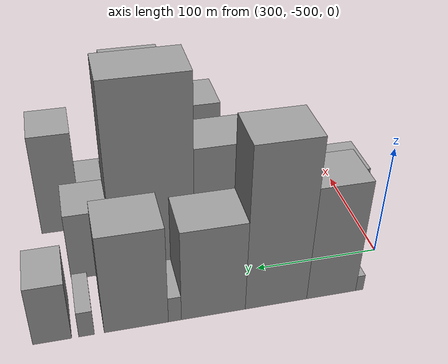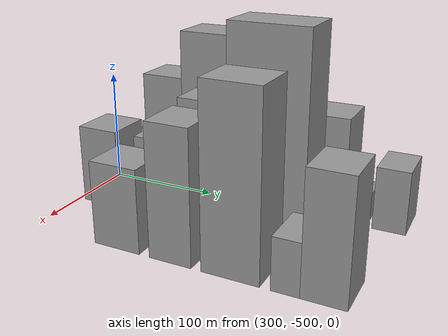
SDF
<sdf version="1.6">
 <world name="default">
  <model name="building_161">
   <static>1</static>
   <pose>280.0000 -469.6710 0 0.000000 0.000000 0.000000</pose>
   <link name="link">
    <pose>0 0 7.50 0 0 0</pose>
    <collision name="collision"><geometry><box><size>40.0000 6.0651 15.0000</size></box></geometry></collision>
    <visual name="visual">
     <cast_shadows>0</cast_shadows>
     <geometry><box><size>40.0000 6.0651 15.0000</size></box></geometry>
     <material>
      <script>
       <uri>model://grey_wall/materials/scripts</uri>
       <uri>model://grey_wall/materials/textures</uri>
       <name>vrc/grey_wall</name>
      </script>
     </material>
    </visual>
   </link>
  </model>
  <model name="building_162">
   <static>1</static>
   <pose>280.0000 -446.8556 0 0.000000 0.000000 0.000000</pose>
   <link name="link">
    <pose>0 0 52.50 0 0 0</pose>
    <collision name="collision"><geometry><box><size>40.0000 39.5656 105.0000</size></box></geometry></collision>
    <visual name="visual">
     <cast_shadows>0</cast_shadows>
     <geometry><box><size>40.0000 39.5656 105.0000</size></box></geometry>
     <material>
      <script>
       <uri>model://grey_wall/materials/scripts</uri>
       <uri>model://grey_wall/materials/textures</uri>
       <name>vrc/grey_wall</name>
      </script>
     </material>
    </visual>
   </link>
  </model>
  <model name="building_163">
   <static>1</static>
   <pose>280.0000 -402.9466 0 0.000000 0.000000 0.000000</pose>
   <link name="link">
    <pose>0 0 73.50 0 0 0</pose>
    <collision name="collision"><geometry><box><size>40.0000 48.2525 147.0000</size></box></geometry></collision>
    <visual name="visual">
     <cast_shadows>0</cast_shadows>
     <geometry><box><size>40.0000 48.2525 147.0000</size></box></geometry>
     <material>
      <script>
       <uri>model://grey_wall/materials/scripts</uri>
       <uri>model://grey_wall/materials/textures</uri>
       <name>vrc/grey_wall</name>
      </script>
     </material>
    </visual>
   </link>
  </model>
  <model name="building_164">
   <static>1</static>
   <pose>280.0000 -354.5082 0 0.000000 0.000000 0.000000</pose>
   <link name="link">
    <pose>0 0 42.00 0 0 0</pose>
    <collision name="collision"><geometry><box><size>40.0000 48.6243 84.0000</size></box></geometry></collision>
    <visual name="visual">
     <cast_shadows>0</cast_shadows>
     <geometry><box><size>40.0000 48.6243 84.0000</size></box></geometry>
     <material>
      <script>
       <uri>model://grey_wall/materials/scripts</uri>
       <uri>model://grey_wall/materials/textures</uri>
       <name>vrc/grey_wall</name>
      </script>
     </material>
    </visual>
   </link>
  </model>
  <model name="building_165">
   <static>1</static>
   <pose>280.0000 -325.3545 0 0.000000 0.000000 0.000000</pose>
   <link name="link">
    <pose>0 0 12.00 0 0 0</pose>
    <collision name="collision"><geometry><box><size>40.0000 9.6832 24.0000</size></box></geometry></collision>
    <visual name="visual">
     <cast_shadows>0</cast_shadows>
     <geometry><box><size>40.0000 9.6832 24.0000</size></box></geometry>
     <material>
      <script>
       <uri>model://grey_wall/materials/scripts</uri>
       <uri>model://grey_wall/materials/textures</uri>
       <name>vrc/grey_wall</name>
      </script>
     </material>
    </visual>
   </link>
  </model>
  <model name="building_166">
   <static>1</static>
   <pose>280.0000 -297.0062 0 0.000000 0.000000 0.000000</pose>
   <link name="link">
    <pose>0 0 45.00 0 0 0</pose>
    <collision name="collision"><geometry><box><size>40.0000 47.0134 90.0000</size></box></geometry></collision>
    <visual name="visual">
     <cast_shadows>0</cast_shadows>
     <geometry><box><size>40.0000 47.0134 90.0000</size></box></geometry>
     <material>
      <script>
       <uri>model://grey_wall/materials/scripts</uri>
       <uri>model://grey_wall/materials/textures</uri>
       <name>vrc/grey_wall</name>
      </script>
     </material>
    </visual>
   </link>
  </model>
  <model name="building_167">
   <static>1</static>
   <pose>280.0000 -260.8635 0 0.000000 0.000000 0.000000</pose>
   <link name="link">
    <pose>0 0 12.00 0 0 0</pose>
    <collision name="collision"><geometry><box><size>40.0000 11.2719 24.0000</size></box></geometry></collision>
    <visual name="visual">
     <cast_shadows>0</cast_shadows>
     <geometry><box><size>40.0000 11.2719 24.0000</size></box></geometry>
     <material>
      <script>
       <uri>model://grey_wall/materials/scripts</uri>
       <uri>model://grey_wall/materials/textures</uri>
       <name>vrc/grey_wall</name>
      </script>
     </material>
    </visual>
   </link>
  </model>
  <model name="building_168">
   <static>1</static>
   <pose>280.0000 -236.5113 0 0.000000 0.000000 0.000000</pose>
   <link name="link">
    <pose>0 0 27.00 0 0 0</pose>
    <collision name="collision"><geometry><box><size>40.0000 27.4324 54.0000</size></box></geometry></collision>
    <visual name="visual">
     <cast_shadows>0</cast_shadows>
     <geometry><box><size>40.0000 27.4324 54.0000</size></box></geometry>
     <material>
      <script>
       <uri>model://grey_wall/materials/scripts</uri>
       <uri>model://grey_wall/materials/textures</uri>
       <name>vrc/grey_wall</name>
      </script>
     </material>
    </visual>
   </link>
  </model>
  <model name="building_218">
   <static>1</static>
   <pose>340.0000 -475.8066 0 0.000000 0.000000 0.000000</pose>
   <link name="link">
    <pose>0 0 34.50 0 0 0</pose>
    <collision name="collision"><geometry><box><size>40.0000 37.3549 69.0000</size></box></geometry></collision>
    <visual name="visual">
     <cast_shadows>0</cast_shadows>
     <geometry><box><size>40.0000 37.3549 69.0000</size></box></geometry>
     <material>
      <script>
       <uri>model://grey_wall/materials/scripts</uri>
       <uri>model://grey_wall/materials/textures</uri>
       <name>vrc/grey_wall</name>
      </script>
     </material>
    </visual>
   </link>
  </model>
  <model name="building_219">
   <static>1</static>
   <pose>340.0000 -447.6918 0 0.000000 0.000000 0.000000</pose>
   <link name="link">
    <pose>0 0 18.00 0 0 0</pose>
    <collision name="collision"><geometry><box><size>40.0000 18.8747 36.0000</size></box></geometry></collision>
    <visual name="visual">
     <cast_shadows>0</cast_shadows>
     <geometry><box><size>40.0000 18.8747 36.0000</size></box></geometry>
     <material>
      <script>
       <uri>model://grey_wall/materials/scripts</uri>
       <uri>model://grey_wall/materials/textures</uri>
       <name>vrc/grey_wall</name>
      </script>
     </material>
    </visual>
   </link>
  </model>
  <model name="building_220">
   <static>1</static>
   <pose>340.0000 -418.4311 0 0.000000 0.000000 0.000000</pose>
   <link name="link">
    <pose>0 0 34.50 0 0 0</pose>
    <collision name="collision"><geometry><box><size>40.0000 39.6467 69.0000</size></box></geometry></collision>
    <visual name="visual">
     <cast_shadows>0</cast_shadows>
     <geometry><box><size>40.0000 39.6467 69.0000</size></box></geometry>
     <material>
      <script>
       <uri>model://grey_wall/materials/scripts</uri>
       <uri>model://grey_wall/materials/textures</uri>
       <name>vrc/grey_wall</name>
      </script>
     </material>
    </visual>
   </link>
  </model>
  <model name="building_221">
   <static>1</static>
   <pose>340.0000 -374.2038 0 0.000000 0.000000 0.000000</pose>
   <link name="link">
    <pose>0 0 54.00 0 0 0</pose>
    <collision name="collision"><geometry><box><size>40.0000 42.8080 108.0000</size></box></geometry></collision>
    <visual name="visual">
     <cast_shadows>0</cast_shadows>
     <geometry><box><size>40.0000 42.8080 108.0000</size></box></geometry>
     <material>
      <script>
       <uri>model://grey_wall/materials/scripts</uri>
       <uri>model://grey_wall/materials/textures</uri>
       <name>vrc/grey_wall</name>
      </script>
     </material>
    </visual>
   </link>
  </model>
  <model name="building_222">
   <static>1</static>
   <pose>340.0000 -320.0629 0 0.000000 0.000000 0.000000</pose>
   <link name="link">
    <pose>0 0 85.50 0 0 0</pose>
    <collision name="collision"><geometry><box><size>40.0000 65.4738 171.0000</size></box></geometry></collision>
    <visual name="visual">
     <cast_shadows>0</cast_shadows>
     <geometry><box><size>40.0000 65.4738 171.0000</size></box></geometry>
     <material>
      <script>
       <uri>model://grey_wall/materials/scripts</uri>
       <uri>model://grey_wall/materials/textures</uri>
       <name>vrc/grey_wall</name>
      </script>
     </material>
    </visual>
   </link>
  </model>
  <model name="building_223">
   <static>1</static>
   <pose>340.0000 -270.7718 0 0.000000 0.000000 0.000000</pose>
   <link name="link">
    <pose>0 0 31.50 0 0 0</pose>
    <collision name="collision"><geometry><box><size>40.0000 33.1084 63.0000</size></box></geometry></collision>
    <visual name="visual">
     <cast_shadows>0</cast_shadows>
     <geometry><box><size>40.0000 33.1084 63.0000</size></box></geometry>
     <material>
      <script>
       <uri>model://grey_wall/materials/scripts</uri>
       <uri>model://grey_wall/materials/textures</uri>
       <name>vrc/grey_wall</name>
      </script>
     </material>
    </visual>
   </link>
  </model>
  <model name="building_270">
   <static>1</static>
   <pose>400.0000 -416.8966 0 0.000000 0.000000 0.000000</pose>
   <link name="link">
    <pose>0 0 34.50 0 0 0</pose>
    <collision name="collision"><geometry><box><size>40.0000 41.1717 69.0000</size></box></geometry></collision>
    <visual name="visual">
     <cast_shadows>0</cast_shadows>
     <geometry><box><size>40.0000 41.1717 69.0000</size></box></geometry>
     <material>
      <script>
       <uri>model://grey_wall/materials/scripts</uri>
       <uri>model://grey_wall/materials/textures</uri>
       <name>vrc/grey_wall</name>
      </script>
     </material>
    </visual>
   </link>
  </model>
  <model name="building_271">
   <static>1</static>
   <pose>400.0000 -369.3567 0 0.000000 0.000000 0.000000</pose>
   <link name="link">
    <pose>0 0 54.00 0 0 0</pose>
    <collision name="collision"><geometry><box><size>40.0000 35.9081 108.0000</size></box></geometry></collision>
    <visual name="visual">
     <cast_shadows>0</cast_shadows>
     <geometry><box><size>40.0000 35.9081 108.0000</size></box></geometry>
     <material>
      <script>
       <uri>model://grey_wall/materials/scripts</uri>
       <uri>model://grey_wall/materials/textures</uri>
       <name>vrc/grey_wall</name>
      </script>
     </material>
    </visual>
   </link>
  </model>
  <model name="building_272">
   <static>1</static>
   <pose>400.0000 -320.2535 0 0.000000 0.000000 0.000000</pose>
   <link name="link">
    <pose>0 0 72.00 0 0 0</pose>
    <collision name="collision"><geometry><box><size>40.0000 46.2983 144.0000</size></box></geometry></collision>
    <visual name="visual">
     <cast_shadows>0</cast_shadows>
     <geometry><box><size>40.0000 46.2983 144.0000</size></box></geometry>
     <material>
      <script>
       <uri>model://grey_wall/materials/scripts</uri>
       <uri>model://grey_wall/materials/textures</uri>
       <name>vrc/grey_wall</name>
      </script>
     </material>
    </visual>
   </link>
  </model>
  <model name="building_273">
   <static>1</static>
   <pose>400.0000 -278.3790 0 0.000000 0.000000 0.000000</pose>
   <link name="link">
    <pose>0 0 21.00 0 0 0</pose>
    <collision name="collision"><geometry><box><size>40.0000 21.4507 42.0000</size></box></geometry></collision>
    <visual name="visual">
     <cast_shadows>0</cast_shadows>
     <geometry><box><size>40.0000 21.4507 42.0000</size></box></geometry>
     <material>
      <script>
       <uri>model://grey_wall/materials/scripts</uri>
       <uri>model://grey_wall/materials/textures</uri>
       <name>vrc/grey_wall</name>
      </script>
     </material>
    </visual>
   </link>
  </model>
  <model name="building_274">
   <static>1</static>
   <pose>400.0000 -250.8893 0 0.000000 0.000000 0.000000</pose>
   <link name="link">
    <pose>0 0 48.00 0 0 0</pose>
    <collision name="collision"><geometry><box><size>40.0000 33.5288 96.0000</size></box></geometry></collision>
    <visual name="visual">
     <cast_shadows>0</cast_shadows>
     <geometry><box><size>40.0000 33.5288 96.0000</size></box></geometry>
     <material>
      <script>
       <uri>model://grey_wall/materials/scripts</uri>
       <uri>model://grey_wall/materials/textures</uri>
       <name>vrc/grey_wall</name>
      </script>
     </material>
    </visual>
   </link>
  </model>
 </world>
</sdf>
